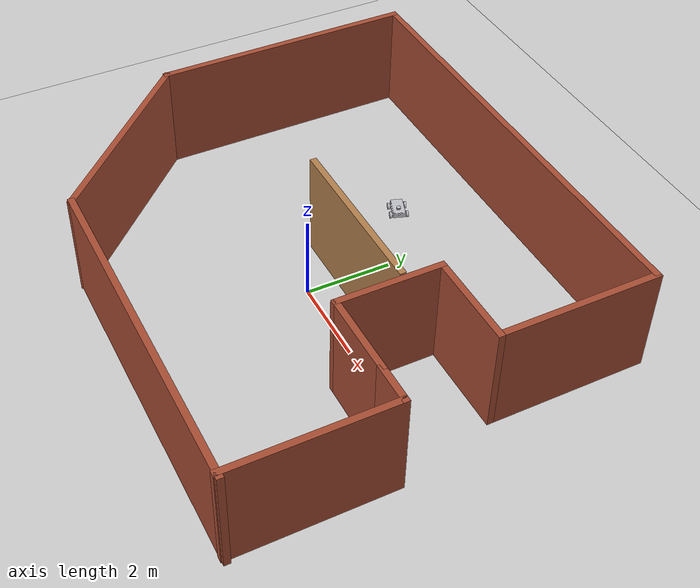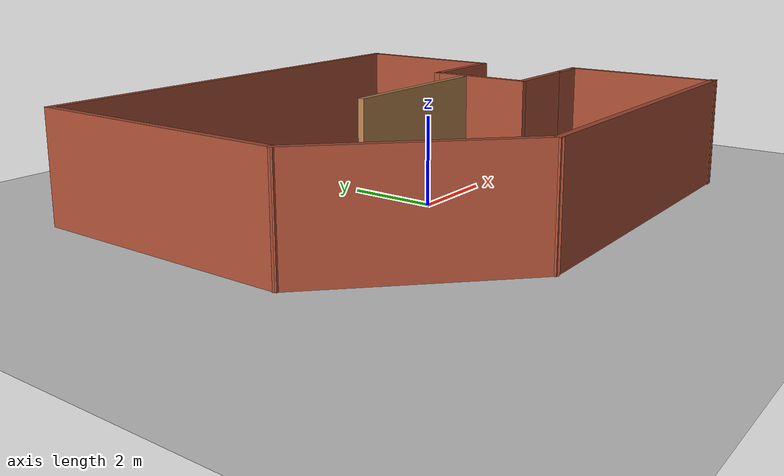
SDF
<sdf version="1.7">
 <world name="default">
  <light name="sun" type="directional">
   <pose>0 0 10 0 -0 0</pose>
   <diffuse>0.8 0.8 0.8 1</diffuse>
   <specular>0.2 0.2 0.2 1</specular>
   <attenuation>
    <range>1000</range>
    <constant>0.9</constant>
    <linear>0.01</linear>
    <quadratic>0.001</quadratic>
   </attenuation>
   <direction>-0.5 0.1 -0.9</direction>
   <spot><inner_angle>0</inner_angle><outer_angle>0</outer_angle><falloff>0</falloff></spot>
  </light>
  <model name="ground_plane">
   <static>1</static>
   <link name="link">
    <collision name="collision">
     <geometry><plane><normal>0 0 1</normal><size>100 100</size></plane></geometry>
     <surface>
      <contact><collide_bitmask>65535</collide_bitmask></contact>
      <friction><ode><mu>100</mu><mu2>50</mu2></ode></friction>
     </surface>
    </collision>
    <visual name="visual">
     <cast_shadows>0</cast_shadows>
     <geometry><plane><normal>0 0 1</normal><size>100 100</size></plane></geometry>
     <material>
      <script><uri>file://media/materials/scripts/gazebo.material</uri><name>Gazebo/Grey</name></script>
     </material>
    </visual>
   </link>
  </model>
  <gravity>0 0 -9.8</gravity>
  <magnetic_field>6e-06 2.3e-05 -4.2e-05</magnetic_field>
  <atmosphere type="adiabatic"/>
  <physics type="ode">
   <max_step_size>0.001</max_step_size>
   <real_time_factor>1</real_time_factor>
   <real_time_update_rate>1000</real_time_update_rate>
  </physics>
  <scene><ambient>0.4 0.4 0.4 1</ambient><background>0.7 0.7 0.7 1</background><shadows>1</shadows></scene>
  <spherical_coordinates>
   <surface_model>EARTH_WGS84</surface_model>
   <latitude_deg>0</latitude_deg>
   <longitude_deg>0</longitude_deg>
   <elevation>0</elevation>
   <heading_deg>0</heading_deg>
  </spherical_coordinates>
  <model name="rmp01_bot">
   <link name="base_link">
    <inertial>
     <pose>-0.010386 2.4e-05 0.120697 0 -0 0</pose>
     <mass>14.3585</mass>
     <inertia>
      <ixx>0.149241</ixx>
      <ixy>-1.58634e-05</ixy>
      <ixz>0.0173055</ixz>
      <iyy>0.348864</iyy>
      <iyz>-2.11879e-05</iyz>
      <izz>0.391853</izz>
     </inertia>
    </inertial>
    <collision name="base_link_collision">
     <geometry>
      <mesh>
       <scale>0.001 0.001 0.001</scale>
       <uri>/home/startech/catkin_ws/src/rmp01_bot_description/meshes/base_link.stl</uri>
      </mesh>
     </geometry>
     <surface><friction><ode><mu>0.2</mu><mu2>0.2</mu2></ode></friction></surface>
    </collision>
    <collision name="base_link_fixed_joint_lump__lidar_1_collision_1">
     <geometry>
      <mesh>
       <scale>0.001 0.001 0.001</scale>
       <uri>/home/startech/catkin_ws/src/rmp01_bot_description/meshes/lidar_1.stl</uri>
      </mesh>
     </geometry>
     <surface><friction><ode><mu>0.2</mu><mu2>0.2</mu2></ode></friction></surface>
    </collision>
    <visual name="base_link_visual">
     <geometry>
      <mesh>
       <scale>0.001 0.001 0.001</scale>
       <uri>/home/startech/catkin_ws/src/rmp01_bot_description/meshes/base_link.stl</uri>
      </mesh>
     </geometry>
     <material>
      <script><name>Gazebo/Silver</name><uri>file://media/materials/scripts/gazebo.material</uri></script>
     </material>
    </visual>
    <visual name="base_link_fixed_joint_lump__lidar_1_visual_1">
     <geometry>
      <mesh>
       <scale>0.001 0.001 0.001</scale>
       <uri>/home/startech/catkin_ws/src/rmp01_bot_description/meshes/lidar_1.stl</uri>
      </mesh>
     </geometry>
     <material>
      <script><name>Gazebo/Silver</name><uri>file://media/materials/scripts/gazebo.material</uri></script>
     </material>
    </visual>
    <sensor name="camera1" type="camera">
     <update_rate>30</update_rate>
     <camera name="head">
      <horizontal_fov>1.39626</horizontal_fov>
      <image><width>800</width><height>800</height><format>R8G8B8</format></image>
      <clip><near>0.02</near><far>300</far></clip>
      <noise><type>gaussian</type><mean>0</mean><stddev>0.007</stddev></noise>
     </camera>
     <plugin name="camera_controller" filename="libgazebo_ros_camera.so">
      <alwaysOn>1</alwaysOn>
      <updateRate>0.0</updateRate>
      <cameraName>rrbot/camera1</cameraName>
      <imageTopicName>image_raw</imageTopicName>
      <cameraInfoTopicName>camera_info</cameraInfoTopicName>
      <frameName>camera_link</frameName>
      <hackBaseline>0.07</hackBaseline>
      <distortionK1>0.0</distortionK1>
      <distortionK2>0.0</distortionK2>
      <distortionK3>0.0</distortionK3>
      <distortionT1>0.0</distortionT1>
      <distortionT2>0.0</distortionT2>
      <robotNamespace>/</robotNamespace>
     </plugin>
     <pose>0.1 0 0.23 0 -0 0</pose>
    </sensor>
    <self_collide>1</self_collide>
    <sensor name="head_hokuyo_sensor" type="ray">
     <visualize>0</visualize>
     <update_rate>40</update_rate>
     <ray>
      <scan>
       <horizontal>
        <samples>720</samples>
        <resolution>1</resolution>
        <min_angle>-3.14</min_angle>
        <max_angle>3.14</max_angle>
       </horizontal>
       <vertical><samples>1</samples><min_angle>0</min_angle><max_angle>0</max_angle></vertical>
      </scan>
      <range><min>0.1</min><max>30</max><resolution>0.01</resolution></range>
      <noise><type>gaussian</type><mean>0</mean><stddev>0.01</stddev></noise>
     </ray>
     <plugin name="gazebo_ros_head_hokuyo_controller" filename="libgazebo_ros_laser.so">
      <topicName>/scan</topicName>
      <frameName>lidar_1</frameName>
      <robotNamespace>/</robotNamespace>
     </plugin>
     <pose>-0.1 0 0.23 0 -0 0</pose>
    </sensor>
   </link>
   <joint name="back_left_wheel_joint" type="revolute">
    <pose relative_to="base_link">-0.16 0.17 0.08 0 -0 0</pose>
    <parent>base_link</parent>
    <child>back_left_wheel_1</child>
    <axis>
     <xyz>0 1 0</xyz>
     <limit><lower>-1e+16</lower><upper>1e+16</upper></limit>
     <dynamics><spring_reference>0</spring_reference><spring_stiffness>0</spring_stiffness></dynamics>
    </axis>
   </joint>
   <link name="back_left_wheel_1">
    <pose relative_to="back_left_wheel_joint">0 0 0 0 -0 0</pose>
    <inertial>
     <pose>-0 0.025 0 0 -0 0</pose>
     <mass>0.897123</mass>
     <inertia>
      <ixx>0.001664</ixx>
      <ixy>0</ixy>
      <ixz>0</ixz>
      <iyy>0.002957</iyy>
      <iyz>0</iyz>
      <izz>0.001664</izz>
     </inertia>
    </inertial>
    <collision name="back_left_wheel_1_collision">
     <pose>0.16 -0.17 -0.08 0 -0 0</pose>
     <geometry>
      <mesh>
       <scale>0.001 0.001 0.001</scale>
       <uri>/home/startech/catkin_ws/src/rmp01_bot_description/meshes/back_left_wheel_1.stl</uri>
      </mesh>
     </geometry>
     <surface><friction><ode><mu>0.2</mu><mu2>0.2</mu2></ode></friction></surface>
    </collision>
    <visual name="back_left_wheel_1_visual">
     <pose>0.16 -0.17 -0.08 0 -0 0</pose>
     <geometry>
      <mesh>
       <scale>0.001 0.001 0.001</scale>
       <uri>/home/startech/catkin_ws/src/rmp01_bot_description/meshes/back_left_wheel_1.stl</uri>
      </mesh>
     </geometry>
     <material>
      <script><name>Gazebo/Silver</name><uri>file://media/materials/scripts/gazebo.material</uri></script>
     </material>
    </visual>
    <self_collide>1</self_collide>
   </link>
   <joint name="back_right_wheel_joint" type="revolute">
    <pose relative_to="base_link">-0.16 -0.17 0.08 0 -0 0</pose>
    <parent>base_link</parent>
    <child>back_right_wheel_1</child>
    <axis>
     <xyz>0 -1 0</xyz>
     <limit><lower>-1e+16</lower><upper>1e+16</upper></limit>
     <dynamics><spring_reference>0</spring_reference><spring_stiffness>0</spring_stiffness></dynamics>
    </axis>
   </joint>
   <link name="back_right_wheel_1">
    <pose relative_to="back_right_wheel_joint">0 0 0 0 -0 0</pose>
    <inertial>
     <pose>-0 -0.025 0 0 -0 0</pose>
     <mass>0.897123</mass>
     <inertia>
      <ixx>0.001664</ixx>
      <ixy>0</ixy>
      <ixz>0</ixz>
      <iyy>0.002957</iyy>
      <iyz>0</iyz>
      <izz>0.001664</izz>
     </inertia>
    </inertial>
    <collision name="back_right_wheel_1_collision">
     <pose>0.16 0.17 -0.08 0 -0 0</pose>
     <geometry>
      <mesh>
       <scale>0.001 0.001 0.001</scale>
       <uri>/home/startech/catkin_ws/src/rmp01_bot_description/meshes/back_right_wheel_1.stl</uri>
      </mesh>
     </geometry>
     <surface><friction><ode><mu>0.2</mu><mu2>0.2</mu2></ode></friction></surface>
    </collision>
    <visual name="back_right_wheel_1_visual">
     <pose>0.16 0.17 -0.08 0 -0 0</pose>
     <geometry>
      <mesh>
       <scale>0.001 0.001 0.001</scale>
       <uri>/home/startech/catkin_ws/src/rmp01_bot_description/meshes/back_right_wheel_1.stl</uri>
      </mesh>
     </geometry>
     <material>
      <script><name>Gazebo/Silver</name><uri>file://media/materials/scripts/gazebo.material</uri></script>
     </material>
    </visual>
    <self_collide>1</self_collide>
   </link>
   <joint name="front_left_wheel_joint" type="revolute">
    <pose relative_to="base_link">0.16 0.17 0.08 0 -0 0</pose>
    <parent>base_link</parent>
    <child>front_left_wheel_1</child>
    <axis>
     <xyz>0 1 0</xyz>
     <limit><lower>-1e+16</lower><upper>1e+16</upper></limit>
     <dynamics><spring_reference>0</spring_reference><spring_stiffness>0</spring_stiffness></dynamics>
    </axis>
   </joint>
   <link name="front_left_wheel_1">
    <pose relative_to="front_left_wheel_joint">0 0 0 0 -0 0</pose>
    <inertial>
     <pose>0 0.025 0 0 -0 0</pose>
     <mass>0.897123</mass>
     <inertia>
      <ixx>0.001664</ixx>
      <ixy>0</ixy>
      <ixz>0</ixz>
      <iyy>0.002957</iyy>
      <iyz>0</iyz>
      <izz>0.001664</izz>
     </inertia>
    </inertial>
    <collision name="front_left_wheel_1_collision">
     <pose>-0.16 -0.17 -0.08 0 -0 0</pose>
     <geometry>
      <mesh>
       <scale>0.001 0.001 0.001</scale>
       <uri>/home/startech/catkin_ws/src/rmp01_bot_description/meshes/front_left_wheel_1.stl</uri>
      </mesh>
     </geometry>
     <surface><friction><ode><mu>0.2</mu><mu2>0.2</mu2></ode></friction></surface>
    </collision>
    <visual name="front_left_wheel_1_visual">
     <pose>-0.16 -0.17 -0.08 0 -0 0</pose>
     <geometry>
      <mesh>
       <scale>0.001 0.001 0.001</scale>
       <uri>/home/startech/catkin_ws/src/rmp01_bot_description/meshes/front_left_wheel_1.stl</uri>
      </mesh>
     </geometry>
     <material>
      <script><name>Gazebo/Silver</name><uri>file://media/materials/scripts/gazebo.material</uri></script>
     </material>
    </visual>
    <self_collide>1</self_collide>
   </link>
   <joint name="front_right_wheel_joint" type="revolute">
    <pose relative_to="base_link">0.16 -0.17 0.08 0 -0 0</pose>
    <parent>base_link</parent>
    <child>front_right_wheel_1</child>
    <axis>
     <xyz>0 -1 0</xyz>
     <limit><lower>-1e+16</lower><upper>1e+16</upper></limit>
     <dynamics><spring_reference>0</spring_reference><spring_stiffness>0</spring_stiffness></dynamics>
    </axis>
   </joint>
   <link name="front_right_wheel_1">
    <pose relative_to="front_right_wheel_joint">0 0 0 0 -0 0</pose>
    <inertial>
     <pose>0 -0.025 0 0 -0 0</pose>
     <mass>0.897123</mass>
     <inertia>
      <ixx>0.001664</ixx>
      <ixy>0</ixy>
      <ixz>0</ixz>
      <iyy>0.002957</iyy>
      <iyz>0</iyz>
      <izz>0.001664</izz>
     </inertia>
    </inertial>
    <collision name="front_right_wheel_1_collision">
     <pose>-0.16 0.17 -0.08 0 -0 0</pose>
     <geometry>
      <mesh>
       <scale>0.001 0.001 0.001</scale>
       <uri>/home/startech/catkin_ws/src/rmp01_bot_description/meshes/front_right_wheel_1.stl</uri>
      </mesh>
     </geometry>
     <surface><friction><ode><mu>0.2</mu><mu2>0.2</mu2></ode></friction></surface>
    </collision>
    <visual name="front_right_wheel_1_visual">
     <pose>-0.16 0.17 -0.08 0 -0 0</pose>
     <geometry>
      <mesh>
       <scale>0.001 0.001 0.001</scale>
       <uri>/home/startech/catkin_ws/src/rmp01_bot_description/meshes/front_right_wheel_1.stl</uri>
      </mesh>
     </geometry>
     <material>
      <script><name>Gazebo/Silver</name><uri>file://media/materials/scripts/gazebo.material</uri></script>
     </material>
    </visual>
    <self_collide>1</self_collide>
   </link>
   <plugin name="control" filename="libgazebo_ros_control.so"><robotNamespace>/</robotNamespace></plugin>
   <static>0</static>
   <plugin name="skid_steer_drive_controller" filename="libgazebo_ros_skid_steer_drive.so">
    <updateRate>100.0</updateRate>
    <robotNamespace>/</robotNamespace>
    <leftFrontJoint>front_left_wheel_joint</leftFrontJoint>
    <rightFrontJoint>front_right_wheel_joint</rightFrontJoint>
    <leftRearJoint>back_left_wheel_joint</leftRearJoint>
    <rightRearJoint>back_right_wheel_joint</rightRearJoint>
    <wheelSeparation>0.4</wheelSeparation>
    <wheelDiameter>0.215</wheelDiameter>
    <robotBaseFrame>base_link</robotBaseFrame>
    <torque>20</torque>
    <topicName>cmd_vel</topicName>
    <broadcastTF>1</broadcastTF>
   </plugin>
   <pose>-1.49018 3.07397 -3.4e-05 -4.2e-05 0.000161 2.80143</pose>
  </model>
  <model name="final_new_">
   <pose>-0.119733 0.424186 0 0 -0 0</pose>
   <link name="Wall_0">
    <collision name="Wall_0_Collision">
     <geometry><box><size>8 0.15 2.5</size></box></geometry>
     <pose>0 0 1.25 0 -0 0</pose>
    </collision>
    <visual name="Wall_0_Visual">
     <pose>0 0 1.25 0 -0 0</pose>
     <geometry><box><size>8 0.15 2.5</size></box></geometry>
     <material>
      <script><uri>file://media/materials/scripts/gazebo.material</uri><name>Gazebo/Bricks</name></script>
      <ambient>1 1 1 1</ambient>
     </material>
     <meta><layer>0</layer></meta>
    </visual>
    <pose>1.73027 -4.7492 0 0 -0 0</pose>
   </link>
   <link name="Wall_10">
    <collision name="Wall_10_Collision">
     <geometry><box><size>3.75 0.15 2.5</size></box></geometry>
     <pose>0 0 1.25 0 -0 0</pose>
    </collision>
    <visual name="Wall_10_Visual">
     <pose>0 0 1.25 0 -0 0</pose>
     <geometry><box><size>3.75 0.15 2.5</size></box></geometry>
     <material>
      <script><uri>file://media/materials/scripts/gazebo.material</uri><name>Gazebo/Bricks</name></script>
      <ambient>1 1 1 1</ambient>
     </material>
     <meta><layer>0</layer></meta>
    </visual>
    <pose>5.5758 -2.96973 0 0 -0 -1.5708</pose>
   </link>
   <link name="Wall_12">
    <collision name="Wall_12_Collision">
     <geometry><box><size>4 0.15 2.5</size></box></geometry>
     <pose>0 0 1.25 0 -0 0</pose>
    </collision>
    <visual name="Wall_12_Visual">
     <pose>0 0 1.25 0 -0 0</pose>
     <geometry><box><size>4 0.15 2.5</size></box></geometry>
     <material>
      <script><uri>file://media/materials/scripts/gazebo.material</uri><name>Gazebo/Wood</name></script>
      <ambient>1 1 1 1</ambient>
     </material>
     <meta><layer>0</layer></meta>
    </visual>
    <pose>0.764858 0.363354 0 0 -0 3.14159</pose>
   </link>
   <link name="Wall_2">
    <collision name="Wall_2_Collision">
     <geometry><box><size>5 0.15 2.5</size></box></geometry>
     <pose>0 0 1.25 0 -0 0</pose>
    </collision>
    <visual name="Wall_2_Visual">
     <pose>0 0 1.25 0 -0 0</pose>
     <geometry><box><size>5 0.15 2.5</size></box></geometry>
     <material>
      <script><uri>file://media/materials/scripts/gazebo.material</uri><name>Gazebo/Bricks</name></script>
      <ambient>1 1 1 1</ambient>
     </material>
     <meta><layer>0</layer></meta>
    </visual>
    <pose>-3.90947 -3.03447 0 0 -0 2.35619</pose>
   </link>
   <link name="Wall_3">
    <collision name="Wall_3_Collision">
     <geometry><box><size>6.25 0.15 2.5</size></box></geometry>
     <pose>0 0 1.25 0 -0 0</pose>
    </collision>
    <visual name="Wall_3_Visual">
     <pose>0 0 1.25 0 -0 0</pose>
     <geometry><box><size>6.25 0.15 2.5</size></box></geometry>
     <material>
      <script><uri>file://media/materials/scripts/gazebo.material</uri><name>Gazebo/Bricks</name></script>
      <ambient>1 1 1 1</ambient>
     </material>
     <meta><layer>0</layer></meta>
    </visual>
    <pose>-5.6242 1.73027 0 0 -0 1.5708</pose>
   </link>
   <link name="Wall_4">
    <collision name="Wall_4_Collision">
     <geometry><box><size>10.75 0.15 2.5</size></box></geometry>
     <pose>0 0 1.25 0 -0 0</pose>
    </collision>
    <visual name="Wall_4_Visual">
     <pose>0 0 1.25 0 -0 0</pose>
     <geometry><box><size>10.75 0.15 2.5</size></box></geometry>
     <material>
      <script><uri>file://media/materials/scripts/gazebo.material</uri><name>Gazebo/Bricks</name></script>
      <ambient>1 1 1 1</ambient>
     </material>
     <meta><layer>0</layer></meta>
    </visual>
    <pose>-0.3242 4.78027 0 0 -0 0</pose>
   </link>
   <link name="Wall_5">
    <collision name="Wall_5_Collision">
     <geometry><box><size>3.75 0.15 2.5</size></box></geometry>
     <pose>0 0 1.25 0 -0 0</pose>
    </collision>
    <visual name="Wall_5_Visual">
     <pose>0 0 1.25 0 -0 0</pose>
     <geometry><box><size>3.75 0.15 2.5</size></box></geometry>
     <material>
      <script><uri>file://media/materials/scripts/gazebo.material</uri><name>Gazebo/Bricks</name></script>
      <ambient>1 1 1 1</ambient>
     </material>
     <meta><layer>0</layer></meta>
    </visual>
    <pose>4.9758 2.98027 0 0 -0 -1.5708</pose>
   </link>
   <link name="Wall_6">
    <collision name="Wall_6_Collision">
     <geometry><box><size>2.25 0.15 2.5</size></box></geometry>
     <pose>0 0 1.25 0 -0 0</pose>
    </collision>
    <visual name="Wall_6_Visual">
     <pose>0 0 1.25 0 -0 0</pose>
     <geometry><box><size>2.25 0.15 2.5</size></box></geometry>
     <material>
      <script><uri>file://media/materials/scripts/gazebo.material</uri><name>Gazebo/Bricks</name></script>
      <ambient>1 1 1 1</ambient>
     </material>
     <meta><layer>0</layer></meta>
    </visual>
    <pose>3.9258 1.18027 0 0 -0 3.14159</pose>
   </link>
   <link name="Wall_7">
    <collision name="Wall_7_Collision">
     <geometry><box><size>2.5 0.15 2.5</size></box></geometry>
     <pose>0 0 1.25 0 -0 0</pose>
    </collision>
    <visual name="Wall_7_Visual">
     <pose>0 0 1.25 0 -0 0</pose>
     <geometry><box><size>2.5 0.15 2.5</size></box></geometry>
     <material>
      <script><uri>file://media/materials/scripts/gazebo.material</uri><name>Gazebo/Bricks</name></script>
      <ambient>1 1 1 1</ambient>
     </material>
     <meta><layer>0</layer></meta>
    </visual>
    <pose>2.8758 0.005267 0 0 -0 -1.5708</pose>
   </link>
   <link name="Wall_8">
    <collision name="Wall_8_Collision">
     <geometry><box><size>2 0.15 2.5</size></box></geometry>
     <pose>0 0 1.25 0 -0 0</pose>
    </collision>
    <visual name="Wall_8_Visual">
     <pose>0 0 1.25 0 -0 0</pose>
     <geometry><box><size>2 0.15 2.5</size></box></geometry>
     <material>
      <script><uri>file://media/materials/scripts/gazebo.material</uri><name>Gazebo/Bricks</name></script>
      <ambient>1 1 1 1</ambient>
     </material>
     <meta><layer>0</layer></meta>
    </visual>
    <pose>3.8008 -1.16973 0 0 -0 0</pose>
   </link>
   <link name="Wall_9">
    <collision name="Wall_9_Collision">
     <geometry><box><size>1 0.15 2.5</size></box></geometry>
     <pose>0 0 1.25 0 -0 0</pose>
    </collision>
    <visual name="Wall_9_Visual">
     <pose>0 0 1.25 0 -0 0</pose>
     <geometry><box><size>1 0.15 2.5</size></box></geometry>
     <material>
      <script><uri>file://media/materials/scripts/gazebo.material</uri><name>Gazebo/Bricks</name></script>
      <ambient>1 1 1 1</ambient>
     </material>
     <meta><layer>0</layer></meta>
    </visual>
    <pose>5.1508 -1.16973 0 0 -0 0</pose>
   </link>
   <static>1</static>
  </model>
 </world>
</sdf>
